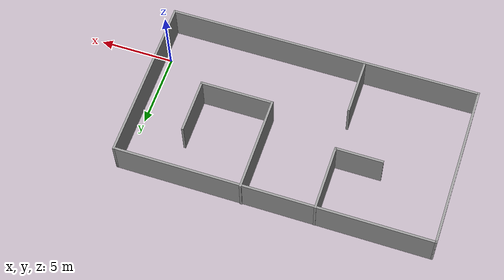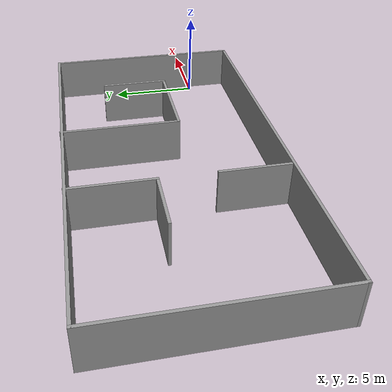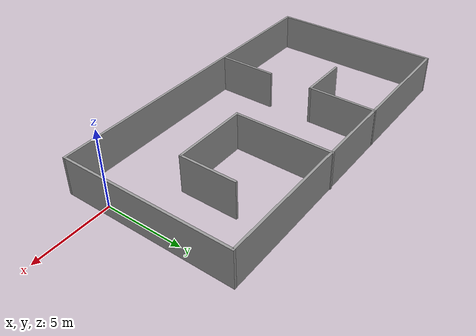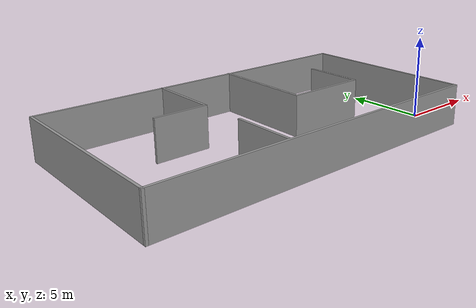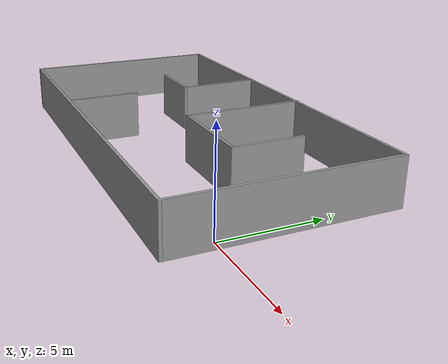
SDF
<?xml version='1.0'?>
<sdf version='1.7'>
  <model name='room'>
    <pose>-10.1176 3.15186 0 0 -0 0</pose>
    <link name='Wall_0'>
      <collision name='Wall_0_Collision'>
        <geometry>
          <box>
            <size>21.25 0.15 2.5</size>
          </box>
        </geometry>
        <pose>0 0 1.25 0 -0 0</pose>
      </collision>
      <visual name='Wall_0_Visual'>
        <pose>0 0 1.25 0 -0 0</pose>
        <geometry>
          <box>
            <size>21.25 0.15 2.5</size>
          </box>
        </geometry>
        <material>
          <script>
            <uri>file://media/materials/scripts/gazebo.material</uri>
            <name>Gazebo/Grey</name>
          </script>
          <ambient>1 1 1 1</ambient>
        </material>
        <meta>
          <layer>0</layer>
        </meta>
      </visual>
      <pose>0 5.52412 0 0 -0 0</pose>
    </link>
    <link name='Wall_1'>
      <collision name='Wall_1_Collision'>
        <geometry>
          <box>
            <size>11.25 0.15 2.5</size>
          </box>
        </geometry>
        <pose>0 0 1.25 0 -0 0</pose>
      </collision>
      <visual name='Wall_1_Visual'>
        <pose>0 0 1.25 0 -0 0</pose>
        <geometry>
          <box>
            <size>11.25 0.15 2.5</size>
          </box>
        </geometry>
        <material>
          <script>
            <uri>file://media/materials/scripts/gazebo.material</uri>
            <name>Gazebo/Grey</name>
          </script>
          <ambient>1 1 1 1</ambient>
        </material>
        <meta>
          <layer>0</layer>
        </meta>
      </visual>
      <pose>10.55 -0.025877 0 0 -0 -1.5708</pose>
    </link>
    <link name='Wall_11'>
      <collision name='Wall_11_Collision'>
        <geometry>
          <box>
            <size>6.5 0.15 2.5</size>
          </box>
        </geometry>
        <pose>0 0 1.25 0 -0 0</pose>
      </collision>
      <visual name='Wall_11_Visual'>
        <pose>0 0 1.25 0 -0 0</pose>
        <geometry>
          <box>
            <size>6.5 0.15 2.5</size>
          </box>
        </geometry>
        <material>
          <script>
            <uri>file://media/materials/scripts/gazebo.material</uri>
            <name>Gazebo/Grey</name>
          </script>
          <ambient>1 1 1 1</ambient>
        </material>
        <meta>
          <layer>0</layer>
        </meta>
      </visual>
      <pose>2.03281 2.40088 0 0 -0 -1.5708</pose>
    </link>
    <link name='Wall_12'>
      <collision name='Wall_12_Collision'>
        <geometry>
          <box>
            <size>5 0.15 2.5</size>
          </box>
        </geometry>
        <pose>0 0 1.25 0 -0 0</pose>
      </collision>
      <visual name='Wall_12_Visual'>
        <pose>0 0 1.25 0 -0 0</pose>
        <geometry>
          <box>
            <size>5 0.15 2.5</size>
          </box>
        </geometry>
        <material>
          <script>
            <uri>file://media/materials/scripts/gazebo.material</uri>
            <name>Gazebo/Grey</name>
          </script>
          <ambient>1 1 1 1</ambient>
        </material>
        <meta>
          <layer>0</layer>
        </meta>
      </visual>
      <pose>4.45781 -0.774123 0 0 -0 0</pose>
    </link>
    <link name='Wall_13'>
      <collision name='Wall_13_Collision'>
        <geometry>
          <box>
            <size>3.75 0.15 2.5</size>
          </box>
        </geometry>
        <pose>0 0 1.25 0 -0 0</pose>
      </collision>
      <visual name='Wall_13_Visual'>
        <pose>0 0 1.25 0 -0 0</pose>
        <geometry>
          <box>
            <size>3.75 0.15 2.5</size>
          </box>
        </geometry>
        <material>
          <script>
            <uri>file://media/materials/scripts/gazebo.material</uri>
            <name>Gazebo/Grey</name>
          </script>
          <ambient>1 1 1 1</ambient>
        </material>
        <meta>
          <layer>0</layer>
        </meta>
      </visual>
      <pose>6.88281 1.02588 0 0 -0 1.5708</pose>
    </link>
    <link name='Wall_2'>
      <collision name='Wall_2_Collision'>
        <geometry>
          <box>
            <size>21.25 0.15 2.5</size>
          </box>
        </geometry>
        <pose>0 0 1.25 0 -0 0</pose>
      </collision>
      <visual name='Wall_2_Visual'>
        <pose>0 0 1.25 0 -0 0</pose>
        <geometry>
          <box>
            <size>21.25 0.15 2.5</size>
          </box>
        </geometry>
        <material>
          <script>
            <uri>file://media/materials/scripts/gazebo.material</uri>
            <name>Gazebo/Grey</name>
          </script>
          <ambient>1 1 1 1</ambient>
        </material>
        <meta>
          <layer>0</layer>
        </meta>
      </visual>
      <pose>0 -5.57588 0 0 -0 3.14159</pose>
    </link>
    <link name='Wall_3'>
      <collision name='Wall_3_Collision'>
        <geometry>
          <box>
            <size>11.25 0.15 2.5</size>
          </box>
        </geometry>
        <pose>0 0 1.25 0 -0 0</pose>
      </collision>
      <visual name='Wall_3_Visual'>
        <pose>0 0 1.25 0 -0 0</pose>
        <geometry>
          <box>
            <size>11.25 0.15 2.5</size>
          </box>
        </geometry>
        <material>
          <script>
            <uri>file://media/materials/scripts/gazebo.material</uri>
            <name>Gazebo/Grey</name>
          </script>
          <ambient>1 1 1 1</ambient>
        </material>
        <meta>
          <layer>0</layer>
        </meta>
      </visual>
      <pose>-10.55 -0.025877 0 0 -0 1.5708</pose>
    </link>
    <link name='Wall_5'>
      <collision name='Wall_5_Collision'>
        <geometry>
          <box>
            <size>4.5 0.15 2.5</size>
          </box>
        </geometry>
        <pose>0 0 1.25 0 -0 0</pose>
      </collision>
      <visual name='Wall_5_Visual'>
        <pose>0 0 1.25 0 -0 0</pose>
        <geometry>
          <box>
            <size>4.5 0.15 2.5</size>
          </box>
        </geometry>
        <material>
          <script>
            <uri>file://media/materials/scripts/gazebo.material</uri>
            <name>Gazebo/Grey</name>
          </script>
          <ambient>1 1 1 1</ambient>
        </material>
        <meta>
          <layer>0</layer>
        </meta>
      </visual>
      <pose>-2.85704 3.3657 0 0 -0 -1.5708</pose>
    </link>
    <link name='Wall_6'>
      <collision name='Wall_6_Collision'>
        <geometry>
          <box>
            <size>3.25 0.15 2.5</size>
          </box>
        </geometry>
        <pose>0 0 1.25 0 -0 0</pose>
      </collision>
      <visual name='Wall_6_Visual'>
        <pose>0 0 1.25 0 -0 0</pose>
        <geometry>
          <box>
            <size>3.25 0.15 2.5</size>
          </box>
        </geometry>
        <material>
          <script>
            <uri>file://media/materials/scripts/gazebo.material</uri>
            <name>Gazebo/Grey</name>
          </script>
          <ambient>1 1 1 1</ambient>
        </material>
        <meta>
          <layer>0</layer>
        </meta>
      </visual>
      <pose>-4.40704 1.1907 0 0 -0 3.14159</pose>
    </link>
    <link name='Wall_8'>
      <collision name='Wall_8_Collision'>
        <geometry>
          <box>
            <size>3.75 0.15 2.5</size>
          </box>
        </geometry>
        <pose>0 0 1.25 0 -0 0</pose>
      </collision>
      <visual name='Wall_8_Visual'>
        <pose>0 0 1.25 0 -0 0</pose>
        <geometry>
          <box>
            <size>3.75 0.15 2.5</size>
          </box>
        </geometry>
        <material>
          <script>
            <uri>file://media/materials/scripts/gazebo.material</uri>
            <name>Gazebo/Grey</name>
          </script>
          <ambient>1 1 1 1</ambient>
        </material>
        <meta>
          <layer>0</layer>
        </meta>
      </visual>
      <pose>-2.85704 -3.61166 0 0 -0 -1.5708</pose>
    </link>
    <static>1</static>
  </model>
</sdf>
